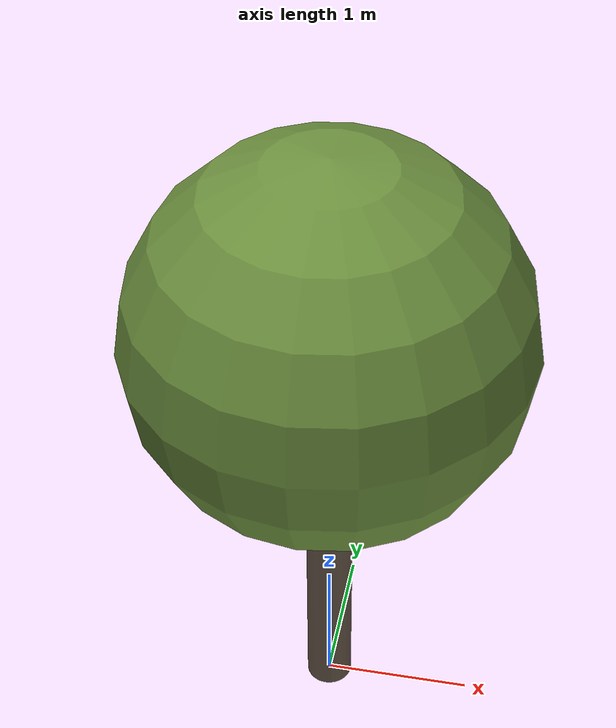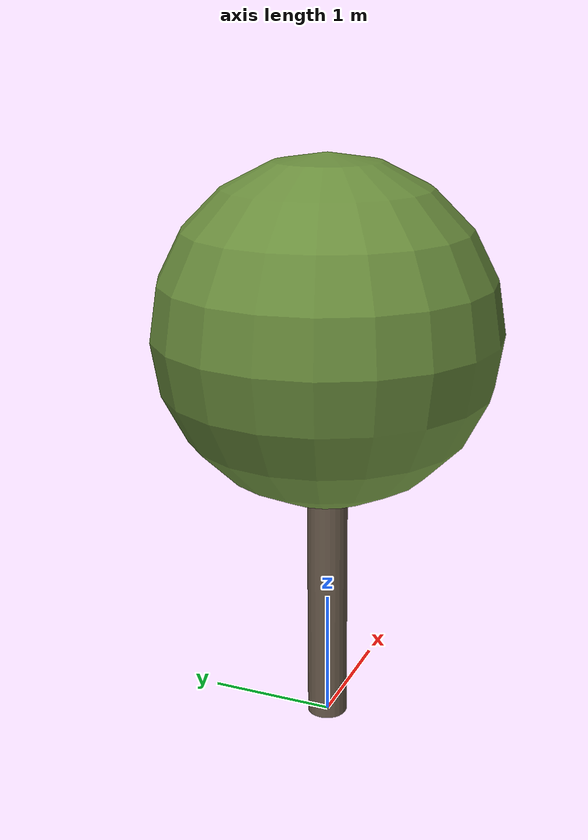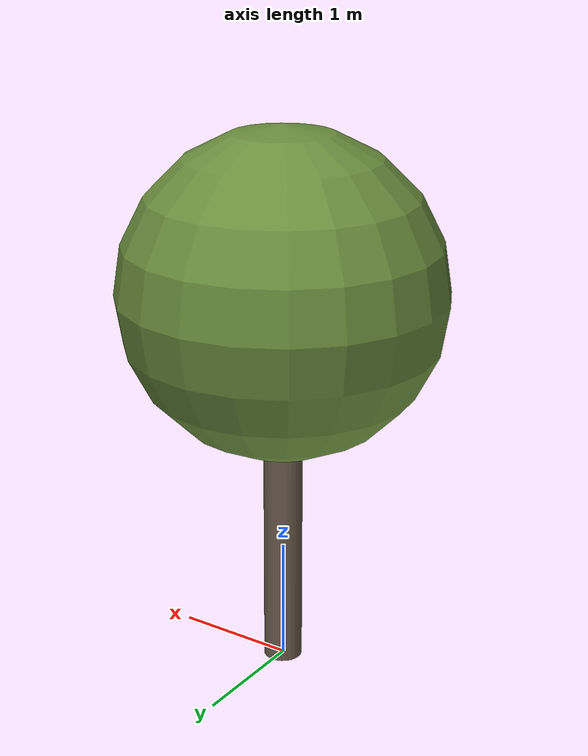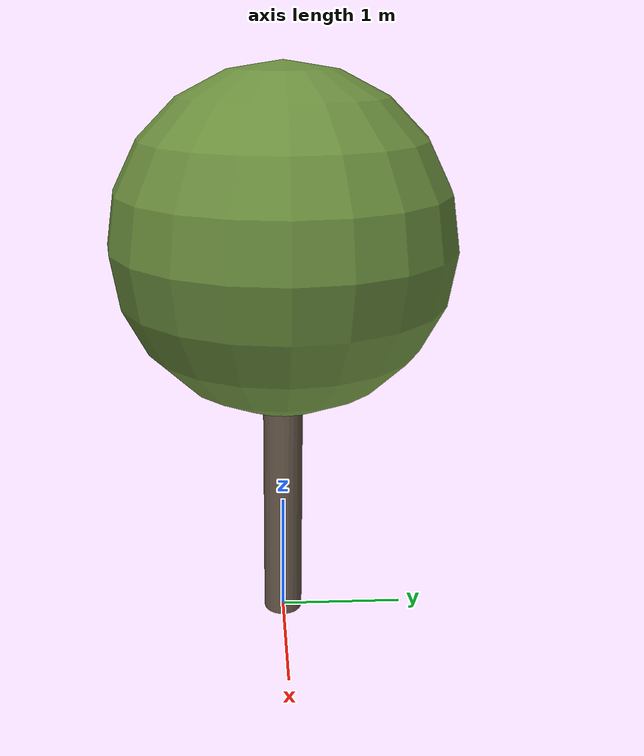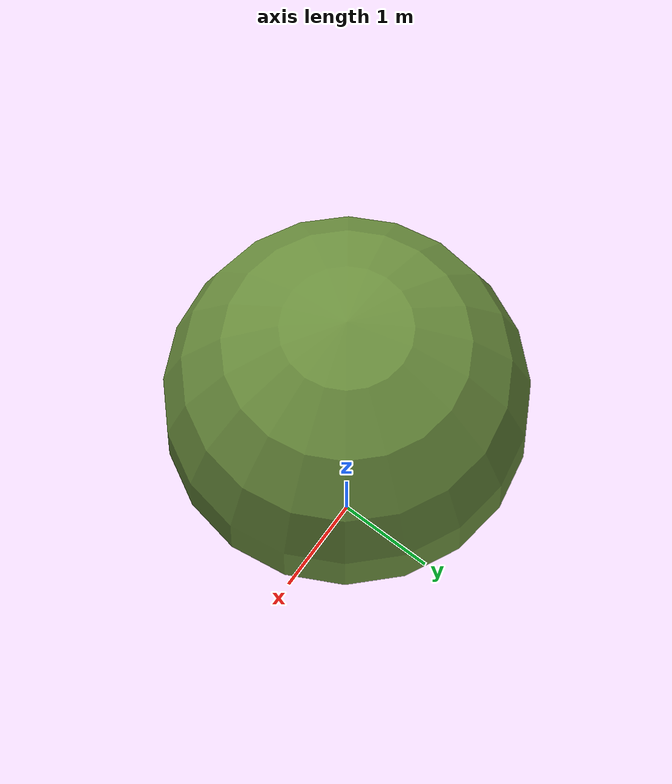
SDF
<?xml version="1.0" ?>
<sdf version="1.10">
  <model name="olivier_provence_02">
    <static>true</static>

    <!-- Tronc -->
    <link name="trunk">
      <pose>0 0 1.3869467292730513 0 0 0</pose>
      <visual name="trunk_visual">
        <geometry>
          <cylinder>
            <radius>0.15691690437275657</radius>
            <length>2.7738934585461026</length>
          </cylinder>
        </geometry>
        <material>
          <ambient>0.42 0.36 0.30 1</ambient>
          <diffuse>0.42 0.36 0.30 1</diffuse>
          <specular>0.1 0.1 0.1 1</specular>
        </material>
      </visual>
      <collision name="trunk_collision">
        <geometry>
          <cylinder>
            <radius>0.15691690437275657</radius>
            <length>2.7738934585461026</length>
          </cylinder>
        </geometry>
      </collision>
    </link>

    <!-- Feuillage -->
    <link name="crown">
      <pose>0 0 3.1651004700731655 0 0 0</pose>
      <visual name="crown_visual">
        <geometry>
          <sphere>
              <radius>1.3040233717568759</radius>
            </sphere>
        </geometry>
        <material>
          <ambient>0.42 0.56 0.24 1</ambient>
          <diffuse>0.42 0.56 0.24 1</diffuse>
          <specular>0.1 0.1 0.1 1</specular>
        </material>
      </visual>
      <collision name="crown_collision">
        <geometry>
          <sphere>
            <radius>1.0432186974055007</radius>
          </sphere>
        </geometry>
      </collision>
    </link>

    <!-- Joint tronc-feuillage -->
    <joint name="trunk_crown_joint" type="fixed">
      <parent>trunk</parent>
      <child>crown</child>
    </joint>

  </model>
</sdf>
